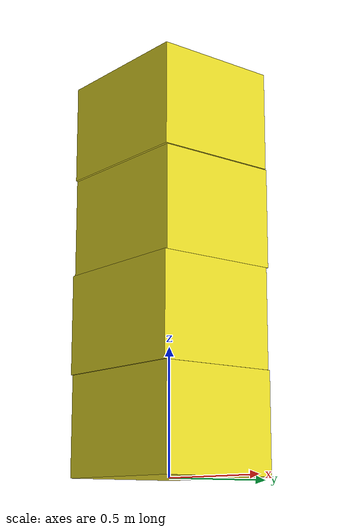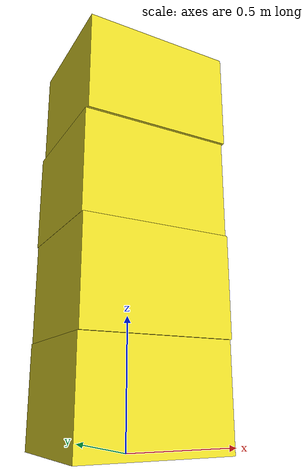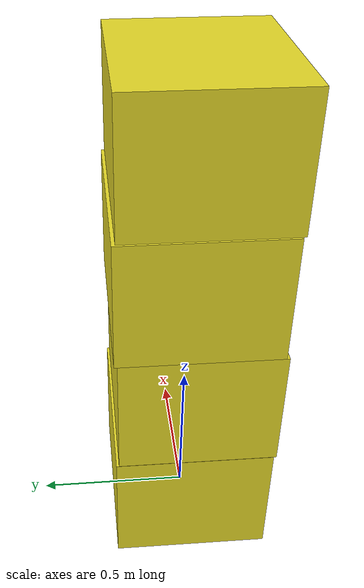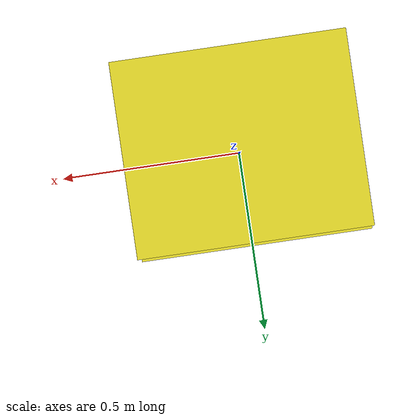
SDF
<?xml version="1.0" encoding="UTF-8"?>
<sdf version='1.4'>
   <model name="baggage_C_x4">
      <model name="baggage_C_0">
         <static>true</static>
         <link name="link">
               <collision name="collision">
                  <geometry>
                     <box>
                        <size>0.6 0.5 0.4</size>
                     </box>
                  </geometry>
               </collision>
               <visual name="visual">
                  <geometry>
                     <box>
                        <size>0.6 0.5 0.4</size>
                     </box>
                  </geometry>
                  <material>
                     <script>
                        <uri>file://media/materials/scripts/gazebo.material</uri>
                        <name>Gazebo/Yellow</name>
                     </script>
                  </material>
               </visual>
            </link>
            <pose frame=''>0 0 0.2 0 0 0</pose>
      </model>
      <model name="baggage_C_1">
         <static>true</static>
         <link name="link">
               <collision name="collision">
                  <geometry>
                     <box>
                        <size>0.6 0.5 0.4</size>
                     </box>
                  </geometry>
               </collision>
               <visual name="visual">
                  <geometry>
                     <box>
                        <size>0.6 0.5 0.4</size>
                     </box>
                  </geometry>
                  <material>
                     <script>
                        <uri>file://media/materials/scripts/gazebo.material</uri>
                        <name>Gazebo/Yellow</name>
                     </script>
                  </material>
               </visual>
            </link>
            <pose frame=''>0.0008 -0.0083 0.6 0 0 0</pose>
      </model>
      <model name="baggage_C_2">
         <static>true</static>
         <link name="link">
               <collision name="collision">
                  <geometry>
                     <box>
                        <size>0.6 0.5 0.4</size>
                     </box>
                  </geometry>
               </collision>
               <visual name="visual">
                  <geometry>
                     <box>
                        <size>0.6 0.5 0.4</size>
                     </box>
                  </geometry>
                  <material>
                     <script>
                        <uri>file://media/materials/scripts/gazebo.material</uri>
                        <name>Gazebo/Yellow</name>
                     </script>
                  </material>
               </visual>
            </link>
            <pose frame=''>0.0001 0.0014 1.0 0 0 0</pose>
      </model>
      <model name="baggage_C_3">
         <static>true</static>
         <link name="link">
               <collision name="collision">
                  <geometry>
                     <box>
                        <size>0.6 0.5 0.4</size>
                     </box>
                  </geometry>
               </collision>
               <visual name="visual">
                  <geometry>
                     <box>
                        <size>0.6 0.5 0.4</size>
                     </box>
                  </geometry>
                  <material>
                     <script>
                        <uri>file://media/materials/scripts/gazebo.material</uri>
                        <name>Gazebo/Yellow</name>
                     </script>
                  </material>
               </visual>
            </link>
            <pose frame=''>0.0070 -0.0089 1.4 0 0 0</pose>
      </model>
   </model>
</sdf>
